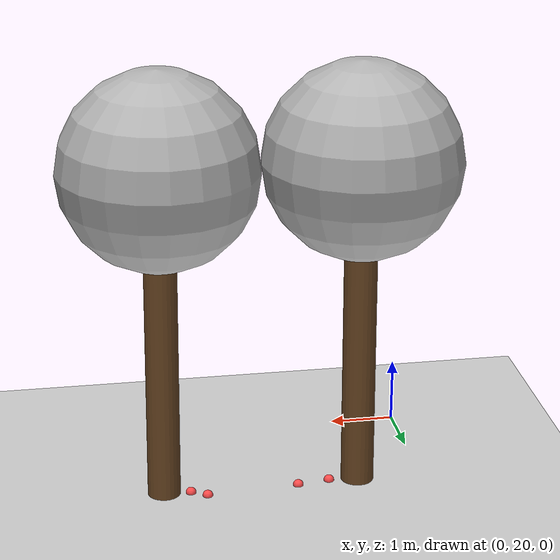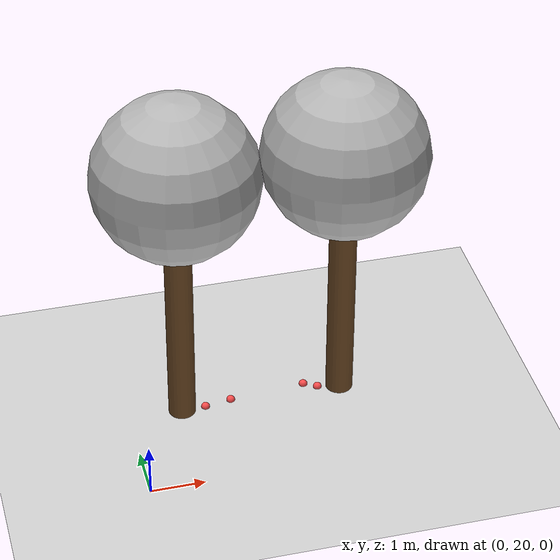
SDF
<sdf version="1.7">
 <world name="default">
  <model name="ground_plane">
   <static>1</static>
   <link name="link">
    <collision name="collision">
     <geometry><plane><normal>0 0 1</normal><size>100 100</size></plane></geometry>
     <surface>
      <contact><collide_bitmask>65535</collide_bitmask></contact>
      <friction><ode><mu>100</mu><mu2>50</mu2></ode></friction>
     </surface>
    </collision>
    <visual name="visual">
     <cast_shadows>0</cast_shadows>
     <geometry><plane><normal>0 0 1</normal><size>100 100</size></plane></geometry>
     <material>
      <script><uri>file://media/materials/scripts/gazebo.material</uri><name>Gazebo/Grey</name></script>
     </material>
    </visual>
   </link>
  </model>
  <model name="tree_simple_41">
   <static>1</static>
   <link name="link">
    <pose>0 0 0.1 0 -0 0</pose>
    <inertial>
     <mass>666</mass>
     <inertia>
      <ixx>0.0861167</ixx>
      <ixy>0</ixy>
      <ixz>0</ixz>
      <iyy>0.0861167</iyy>
      <iyz>0</iyz>
      <izz>0.0861167</izz>
     </inertia>
    </inertial>
    <collision name="collision_trunk">
     <pose>0 0 2 0 -0 0</pose>
     <geometry><cylinder><radius>0.25</radius><length>4</length></cylinder></geometry>
     <surface>
      <contact>
       <poissons_ratio>0.347</poissons_ratio>
       <elastic_modulus>8.8e+09</elastic_modulus>
       <ode><kp>100000</kp><kd>100</kd><max_vel>100</max_vel><min_depth>0.001</min_depth></ode>
      </contact>
      <friction>
       <torsional>
        <coefficient>1</coefficient>
        <use_patch_radius>0</use_patch_radius>
        <surface_radius>0.01</surface_radius>
       </torsional>
      </friction>
     </surface>
    </collision>
    <collision name="collision_treetop">
     <pose>0 0 5.2 0 -0 0</pose>
     <geometry><sphere><radius>1.5</radius></sphere></geometry>
     <surface>
      <contact>
       <poissons_ratio>0.347</poissons_ratio>
       <elastic_modulus>8.8e+09</elastic_modulus>
       <ode><kp>100000</kp><kd>100</kd><max_vel>100</max_vel><min_depth>0.001</min_depth></ode>
      </contact>
      <friction>
       <torsional>
        <coefficient>1</coefficient>
        <use_patch_radius>0</use_patch_radius>
        <surface_radius>0.01</surface_radius>
       </torsional>
      </friction>
     </surface>
    </collision>
    <visual name="trunk">
     <pose>0 0 2 0 -0 0</pose>
     <geometry><cylinder><radius>0.25</radius><length>4</length></cylinder></geometry>
     <material>
      <script>
       <uri>model://tree_simple/scripts</uri>
       <uri>model://tree_simple/materials/textures</uri>
       <name>TreeSimple/Trunk</name>
      </script>
     </material>
    </visual>
    <visual name="treetop">
     <pose>0 0 5.2 0 -0 0</pose>
     <geometry><sphere><radius>1.5</radius></sphere></geometry>
     <material>
      <script>
       <uri>model://tree_simple/scripts</uri>
       <uri>model://tree_simple/materials/textures</uri>
       <name>TreeSimple/Treetop</name>
      </script>
     </material>
    </visual>
   </link>
   <pose>1 22 -0.1 0 -0 0</pose>
  </model>
  <model name="tree_simple_42">
   <static>1</static>
   <link name="link">
    <pose>0 0 0.1 0 -0 0</pose>
    <inertial>
     <mass>666</mass>
     <inertia>
      <ixx>0.0861167</ixx>
      <ixy>0</ixy>
      <ixz>0</ixz>
      <iyy>0.0861167</iyy>
      <iyz>0</iyz>
      <izz>0.0861167</izz>
     </inertia>
    </inertial>
    <collision name="collision_trunk">
     <pose>0 0 2 0 -0 0</pose>
     <geometry><cylinder><radius>0.25</radius><length>4</length></cylinder></geometry>
     <surface>
      <contact>
       <poissons_ratio>0.347</poissons_ratio>
       <elastic_modulus>8.8e+09</elastic_modulus>
       <ode><kp>100000</kp><kd>100</kd><max_vel>100</max_vel><min_depth>0.001</min_depth></ode>
      </contact>
      <friction>
       <torsional>
        <coefficient>1</coefficient>
        <use_patch_radius>0</use_patch_radius>
        <surface_radius>0.01</surface_radius>
       </torsional>
      </friction>
     </surface>
    </collision>
    <collision name="collision_treetop">
     <pose>0 0 5.2 0 -0 0</pose>
     <geometry><sphere><radius>1.5</radius></sphere></geometry>
     <surface>
      <contact>
       <poissons_ratio>0.347</poissons_ratio>
       <elastic_modulus>8.8e+09</elastic_modulus>
       <ode><kp>100000</kp><kd>100</kd><max_vel>100</max_vel><min_depth>0.001</min_depth></ode>
      </contact>
      <friction>
       <torsional>
        <coefficient>1</coefficient>
        <use_patch_radius>0</use_patch_radius>
        <surface_radius>0.01</surface_radius>
       </torsional>
      </friction>
     </surface>
    </collision>
    <visual name="trunk">
     <pose>0 0 2 0 -0 0</pose>
     <geometry><cylinder><radius>0.25</radius><length>4</length></cylinder></geometry>
     <material>
      <script>
       <uri>model://tree_simple/scripts</uri>
       <uri>model://tree_simple/materials/textures</uri>
       <name>TreeSimple/Trunk</name>
      </script>
     </material>
    </visual>
    <visual name="treetop">
     <pose>0 0 5.2 0 -0 0</pose>
     <geometry><sphere><radius>1.5</radius></sphere></geometry>
     <material>
      <script>
       <uri>model://tree_simple/scripts</uri>
       <uri>model://tree_simple/materials/textures</uri>
       <name>TreeSimple/Treetop</name>
      </script>
     </material>
    </visual>
   </link>
   <pose>4 22 -0.1 0 -0 0</pose>
  </model>
  <model name="seed_red_178">
   <link name="link">
    <inertial>
     <mass>1</mass>
     <inertia><ixx>0.1</ixx><ixy>0</ixy><ixz>0</ixz><iyy>0.1</iyy><iyz>0</iyz><izz>0.1</izz></inertia>
    </inertial>
    <visual name="visual">
     <geometry><sphere><radius>0.08</radius></sphere></geometry>
     <material>
      <script><name>Gazebo/Grey</name><uri>file://media/materials/scripts/gazebo.material</uri></script>
      <shader type="pixel"><normal_map>__default__</normal_map></shader>
      <ambient>1 0.3 0.3 1</ambient>
      <diffuse>0.7 0.7 0.7 1</diffuse>
      <specular>0.01 0.01 0.01 1</specular>
      <emissive>0 0 0 1</emissive>
     </material>
    </visual>
    <collision name="collision">
     <geometry><sphere><radius>0.0005</radius></sphere></geometry>
     <surface>
      <friction>
       <ode><mu>1</mu><mu2>1</mu2><fdir1>0 0 0</fdir1><slip1>0</slip1><slip2>0</slip2></ode>
       <torsional>
        <coefficient>1</coefficient>
        <patch_radius>0</patch_radius>
        <surface_radius>0</surface_radius>
        <use_patch_radius>1</use_patch_radius>
        <ode><slip>0</slip></ode>
       </torsional>
      </friction>
      <bounce><restitution_coefficient>0</restitution_coefficient><threshold>1e+06</threshold></bounce>
      <contact>
       <collide_without_contact>0</collide_without_contact>
       <collide_without_contact_bitmask>1</collide_without_contact_bitmask>
       <collide_bitmask>1</collide_bitmask>
       <ode>
        <soft_cfm>0</soft_cfm>
        <soft_erp>0.2</soft_erp>
        <kp>1e+13</kp>
        <kd>1</kd>
        <max_vel>0.01</max_vel>
        <min_depth>0</min_depth>
       </ode>
       <bullet>
        <split_impulse>1</split_impulse>
        <split_impulse_penetration_threshold>-0.01</split_impulse_penetration_threshold>
        <soft_cfm>0</soft_cfm>
        <soft_erp>0.2</soft_erp>
        <kp>1e+13</kp>
        <kd>1</kd>
       </bullet>
      </contact>
     </surface>
    </collision>
   </link>
   <static>0</static>
   <pose>1.93474 22.0689 0.0005 0 -0 0</pose>
  </model>
  <model name="seed_red_180">
   <link name="link">
    <inertial>
     <mass>1</mass>
     <inertia><ixx>0.1</ixx><ixy>0</ixy><ixz>0</ixz><iyy>0.1</iyy><iyz>0</iyz><izz>0.1</izz></inertia>
    </inertial>
    <visual name="visual">
     <geometry><sphere><radius>0.08</radius></sphere></geometry>
     <material>
      <script><name>Gazebo/Grey</name><uri>file://media/materials/scripts/gazebo.material</uri></script>
      <shader type="pixel"><normal_map>__default__</normal_map></shader>
      <ambient>1 0.3 0.3 1</ambient>
      <diffuse>0.7 0.7 0.7 1</diffuse>
      <specular>0.01 0.01 0.01 1</specular>
      <emissive>0 0 0 1</emissive>
     </material>
    </visual>
    <collision name="collision">
     <geometry><sphere><radius>0.0005</radius></sphere></geometry>
     <surface>
      <friction>
       <ode><mu>1</mu><mu2>1</mu2><fdir1>0 0 0</fdir1><slip1>0</slip1><slip2>0</slip2></ode>
       <torsional>
        <coefficient>1</coefficient>
        <patch_radius>0</patch_radius>
        <surface_radius>0</surface_radius>
        <use_patch_radius>1</use_patch_radius>
        <ode><slip>0</slip></ode>
       </torsional>
      </friction>
      <bounce><restitution_coefficient>0</restitution_coefficient><threshold>1e+06</threshold></bounce>
      <contact>
       <collide_without_contact>0</collide_without_contact>
       <collide_without_contact_bitmask>1</collide_without_contact_bitmask>
       <collide_bitmask>1</collide_bitmask>
       <ode>
        <soft_cfm>0</soft_cfm>
        <soft_erp>0.2</soft_erp>
        <kp>1e+13</kp>
        <kd>1</kd>
        <max_vel>0.01</max_vel>
        <min_depth>0</min_depth>
       </ode>
       <bullet>
        <split_impulse>1</split_impulse>
        <split_impulse_penetration_threshold>-0.01</split_impulse_penetration_threshold>
        <soft_cfm>0</soft_cfm>
        <soft_erp>0.2</soft_erp>
        <kp>1e+13</kp>
        <kd>1</kd>
       </bullet>
      </contact>
     </surface>
    </collision>
   </link>
   <static>0</static>
   <pose>1.43908 21.9908 0.0005 0 -0 0</pose>
  </model>
  <model name="seed_red_186">
   <link name="link">
    <inertial>
     <mass>1</mass>
     <inertia><ixx>0.1</ixx><ixy>0</ixy><ixz>0</ixz><iyy>0.1</iyy><iyz>0</iyz><izz>0.1</izz></inertia>
    </inertial>
    <visual name="visual">
     <geometry><sphere><radius>0.08</radius></sphere></geometry>
     <material>
      <script><name>Gazebo/Grey</name><uri>file://media/materials/scripts/gazebo.material</uri></script>
      <shader type="pixel"><normal_map>__default__</normal_map></shader>
      <ambient>1 0.3 0.3 1</ambient>
      <diffuse>0.7 0.7 0.7 1</diffuse>
      <specular>0.01 0.01 0.01 1</specular>
      <emissive>0 0 0 1</emissive>
     </material>
    </visual>
    <collision name="collision">
     <geometry><sphere><radius>0.0005</radius></sphere></geometry>
     <surface>
      <friction>
       <ode><mu>1</mu><mu2>1</mu2><fdir1>0 0 0</fdir1><slip1>0</slip1><slip2>0</slip2></ode>
       <torsional>
        <coefficient>1</coefficient>
        <patch_radius>0</patch_radius>
        <surface_radius>0</surface_radius>
        <use_patch_radius>1</use_patch_radius>
        <ode><slip>0</slip></ode>
       </torsional>
      </friction>
      <bounce><restitution_coefficient>0</restitution_coefficient><threshold>1e+06</threshold></bounce>
      <contact>
       <collide_without_contact>0</collide_without_contact>
       <collide_without_contact_bitmask>1</collide_without_contact_bitmask>
       <collide_bitmask>1</collide_bitmask>
       <ode>
        <soft_cfm>0</soft_cfm>
        <soft_erp>0.2</soft_erp>
        <kp>1e+13</kp>
        <kd>1</kd>
        <max_vel>0.01</max_vel>
        <min_depth>0</min_depth>
       </ode>
       <bullet>
        <split_impulse>1</split_impulse>
        <split_impulse_penetration_threshold>-0.01</split_impulse_penetration_threshold>
        <soft_cfm>0</soft_cfm>
        <soft_erp>0.2</soft_erp>
        <kp>1e+13</kp>
        <kd>1</kd>
       </bullet>
      </contact>
     </surface>
    </collision>
   </link>
   <static>0</static>
   <pose>3.35495 22.1831 0.0005 0 -0 0</pose>
  </model>
  <model name="seed_red_193">
   <link name="link">
    <inertial>
     <mass>1</mass>
     <inertia><ixx>0.1</ixx><ixy>0</ixy><ixz>0</ixz><iyy>0.1</iyy><iyz>0</iyz><izz>0.1</izz></inertia>
    </inertial>
    <visual name="visual">
     <geometry><sphere><radius>0.08</radius></sphere></geometry>
     <material>
      <script><name>Gazebo/Grey</name><uri>file://media/materials/scripts/gazebo.material</uri></script>
      <shader type="pixel"><normal_map>__default__</normal_map></shader>
      <ambient>1 0.3 0.3 1</ambient>
      <diffuse>0.7 0.7 0.7 1</diffuse>
      <specular>0.01 0.01 0.01 1</specular>
      <emissive>0 0 0 1</emissive>
     </material>
    </visual>
    <collision name="collision">
     <geometry><sphere><radius>0.0005</radius></sphere></geometry>
     <surface>
      <friction>
       <ode><mu>1</mu><mu2>1</mu2><fdir1>0 0 0</fdir1><slip1>0</slip1><slip2>0</slip2></ode>
       <torsional>
        <coefficient>1</coefficient>
        <patch_radius>0</patch_radius>
        <surface_radius>0</surface_radius>
        <use_patch_radius>1</use_patch_radius>
        <ode><slip>0</slip></ode>
       </torsional>
      </friction>
      <bounce><restitution_coefficient>0</restitution_coefficient><threshold>1e+06</threshold></bounce>
      <contact>
       <collide_without_contact>0</collide_without_contact>
       <collide_without_contact_bitmask>1</collide_without_contact_bitmask>
       <collide_bitmask>1</collide_bitmask>
       <ode>
        <soft_cfm>0</soft_cfm>
        <soft_erp>0.2</soft_erp>
        <kp>1e+13</kp>
        <kd>1</kd>
        <max_vel>0.01</max_vel>
        <min_depth>0</min_depth>
       </ode>
       <bullet>
        <split_impulse>1</split_impulse>
        <split_impulse_penetration_threshold>-0.01</split_impulse_penetration_threshold>
        <soft_cfm>0</soft_cfm>
        <soft_erp>0.2</soft_erp>
        <kp>1e+13</kp>
        <kd>1</kd>
       </bullet>
      </contact>
     </surface>
    </collision>
   </link>
   <static>0</static>
   <pose>3.59516 22.0465 0.0005 0 -0 0</pose>
  </model>
 </world>
</sdf>
